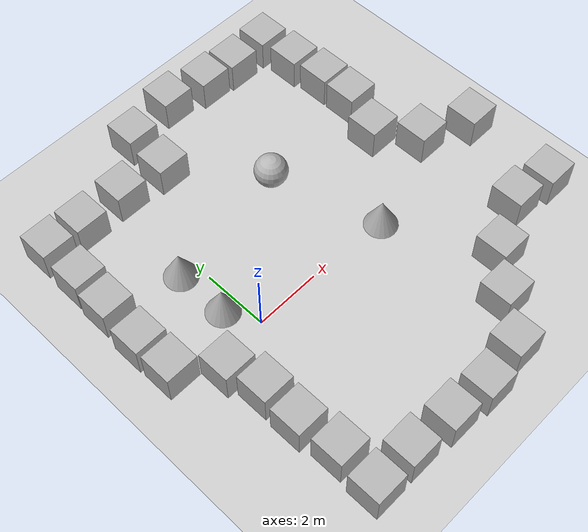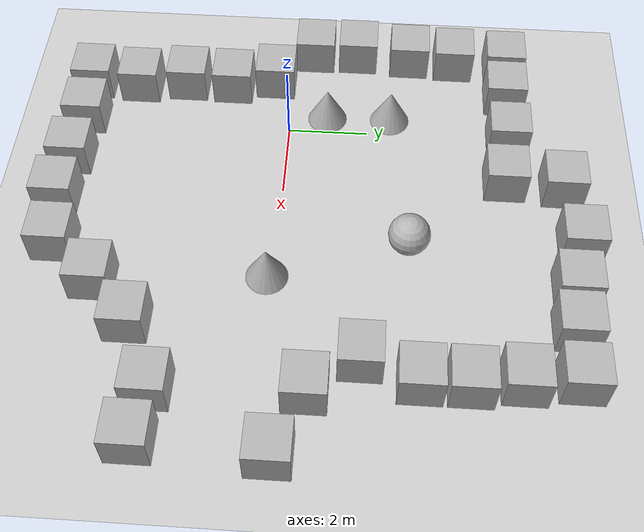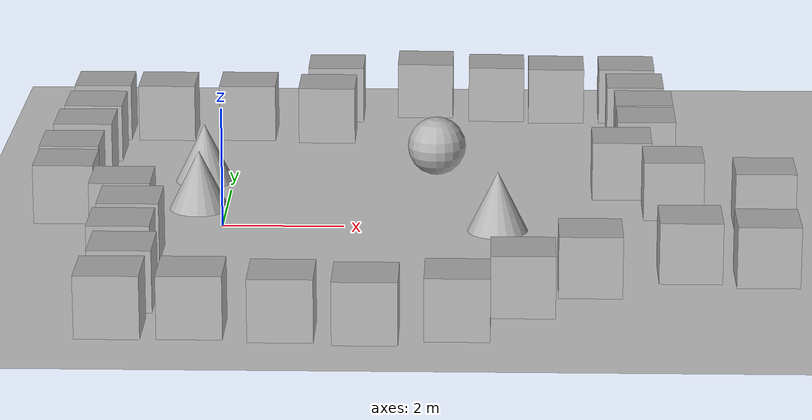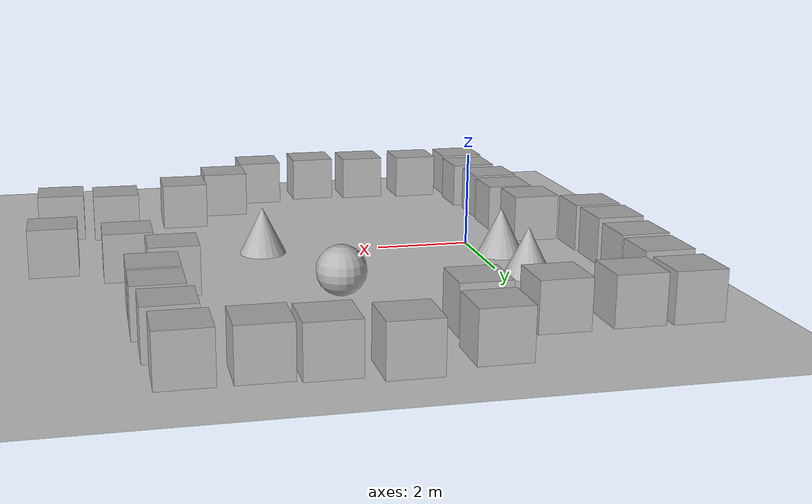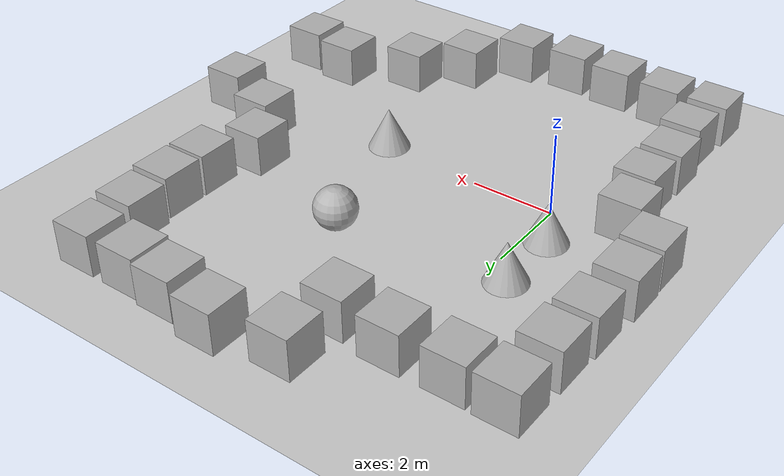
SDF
<sdf version='1.10'>
  <world name='empty'>
    <physics name='1ms' type='ignored'>
      <max_step_size>0.001</max_step_size>
      <real_time_factor>1</real_time_factor>
      <real_time_update_rate>1000</real_time_update_rate>
    </physics>
    <plugin name='gz::sim::systems::Physics' filename='gz-sim-physics-system'/>
    <plugin name='gz::sim::systems::UserCommands' filename='gz-sim-user-commands-system'/>
    <plugin name='gz::sim::systems::SceneBroadcaster' filename='gz-sim-scene-broadcaster-system'/>
    <plugin name='gz::sim::systems::Contact' filename='gz-sim-contact-system'/>
    <gravity>0 0 -9.8000000000000007</gravity>
    <magnetic_field>5.5644999999999998e-06 2.2875799999999999e-05 -4.2388400000000002e-05</magnetic_field>
    <atmosphere type='adiabatic'/>
    <scene>
      <ambient>0.400000006 0.400000006 0.400000006 1</ambient>
      <background>0.699999988 0.699999988 0.699999988 1</background>
      <shadows>true</shadows>
    </scene>
    <model name='ground_plane'>
      <static>true</static>
      <link name='link'>
        <collision name='collision'>
          <geometry>
            <plane>
              <normal>0 0 1</normal>
              <size>100 100</size>
            </plane>
          </geometry>
          <surface>
            <friction>
              <ode/>
            </friction>
            <bounce/>
            <contact/>
          </surface>
        </collision>
        <visual name='visual'>
          <geometry>
            <plane>
              <normal>0 0 1</normal>
              <size>100 100</size>
            </plane>
          </geometry>
          <material>
            <ambient>0.800000012 0.800000012 0.800000012 1</ambient>
            <diffuse>0.800000012 0.800000012 0.800000012 1</diffuse>
            <specular>0.800000012 0.800000012 0.800000012 1</specular>
          </material>
        </visual>
        <pose>0 0 0 0 0 0</pose>
        <inertial>
          <pose>0 0 0 0 0 0</pose>
          <mass>1</mass>
          <inertia>
            <ixx>1</ixx>
            <ixy>0</ixy>
            <ixz>0</ixz>
            <iyy>1</iyy>
            <iyz>0</iyz>
            <izz>1</izz>
          </inertia>
        </inertial>
        <enable_wind>false</enable_wind>
      </link>
      <pose>0 0 0 0 0 0</pose>
      <self_collide>false</self_collide>
    </model>
    <model name='box'>
      <pose>0.066471774833243735 5.5747646299520088 0.5 0 0 0</pose>
      <link name='box_link'>
        <inertial>
          <inertia>
            <ixx>0.16666</ixx>
            <ixy>0</ixy>
            <ixz>0</ixz>
            <iyy>0.16666</iyy>
            <iyz>0</iyz>
            <izz>0.16666</izz>
          </inertia>
          <mass>1</mass>
          <pose>0 0 0 0 0 0</pose>
        </inertial>
        <collision name='box_collision'>
          <geometry>
            <box>
              <size>1 1 1</size>
            </box>
          </geometry>
          <surface>
            <friction>
              <ode/>
            </friction>
            <bounce/>
            <contact/>
          </surface>
        </collision>
        <visual name='box_visual'>
          <geometry>
            <box>
              <size>1 1 1</size>
            </box>
          </geometry>
          <material>
            <ambient>0.300000012 0.300000012 0.300000012 1</ambient>
            <diffuse>0.699999988 0.699999988 0.699999988 1</diffuse>
            <specular>1 1 1 1</specular>
          </material>
        </visual>
        <pose>0 0 0 0 0 0</pose>
        <enable_wind>false</enable_wind>
      </link>
      <static>false</static>
      <self_collide>false</self_collide>
    </model>
    <model name='box_0'>
      <pose>1.4889632192112092 5.4475619647111539 0.5 0 0 0</pose>
      <link name='box_link'>
        <inertial>
          <inertia>
            <ixx>0.16666</ixx>
            <ixy>0</ixy>
            <ixz>0</ixz>
            <iyy>0.16666</iyy>
            <iyz>0</iyz>
            <izz>0.16666</izz>
          </inertia>
          <mass>1</mass>
          <pose>0 0 0 0 0 0</pose>
        </inertial>
        <collision name='box_collision'>
          <geometry>
            <box>
              <size>1 1 1</size>
            </box>
          </geometry>
          <surface>
            <friction>
              <ode/>
            </friction>
            <bounce/>
            <contact/>
          </surface>
        </collision>
        <visual name='box_visual'>
          <geometry>
            <box>
              <size>1 1 1</size>
            </box>
          </geometry>
          <material>
            <ambient>0.300000012 0.300000012 0.300000012 1</ambient>
            <diffuse>0.699999988 0.699999988 0.699999988 1</diffuse>
            <specular>1 1 1 1</specular>
          </material>
        </visual>
        <pose>0 0 0 0 0 0</pose>
        <enable_wind>false</enable_wind>
      </link>
      <static>false</static>
      <self_collide>false</self_collide>
    </model>
    <model name='box_1'>
      <pose>3.212196005500445 7.1497972226885294 0.5 0 0 0</pose>
      <link name='box_link'>
        <inertial>
          <inertia>
            <ixx>0.16666</ixx>
            <ixy>0</ixy>
            <ixz>0</ixz>
            <iyy>0.16666</iyy>
            <iyz>0</iyz>
            <izz>0.16666</izz>
          </inertia>
          <mass>1</mass>
          <pose>0 0 0 0 0 0</pose>
        </inertial>
        <collision name='box_collision'>
          <geometry>
            <box>
              <size>1 1 1</size>
            </box>
          </geometry>
          <surface>
            <friction>
              <ode/>
            </friction>
            <bounce/>
            <contact/>
          </surface>
        </collision>
        <visual name='box_visual'>
          <geometry>
            <box>
              <size>1 1 1</size>
            </box>
          </geometry>
          <material>
            <ambient>0.300000012 0.300000012 0.300000012 1</ambient>
            <diffuse>0.699999988 0.699999988 0.699999988 1</diffuse>
            <specular>1 1 1 1</specular>
          </material>
        </visual>
        <pose>0 0 0 0 0 0</pose>
        <enable_wind>false</enable_wind>
      </link>
      <static>false</static>
      <self_collide>false</self_collide>
    </model>
    <model name='box_2'>
      <pose>4.5056240039213673 6.9323731106292428 0.5 0 0 0</pose>
      <link name='box_link'>
        <inertial>
          <inertia>
            <ixx>0.16666</ixx>
            <ixy>0</ixy>
            <ixz>0</ixz>
            <iyy>0.16666</iyy>
            <iyz>0</iyz>
            <izz>0.16666</izz>
          </inertia>
          <mass>1</mass>
          <pose>0 0 0 0 0 0</pose>
        </inertial>
        <collision name='box_collision'>
          <geometry>
            <box>
              <size>1 1 1</size>
            </box>
          </geometry>
          <surface>
            <friction>
              <ode/>
            </friction>
            <bounce/>
            <contact/>
          </surface>
        </collision>
        <visual name='box_visual'>
          <geometry>
            <box>
              <size>1 1 1</size>
            </box>
          </geometry>
          <material>
            <ambient>0.300000012 0.300000012 0.300000012 1</ambient>
            <diffuse>0.699999988 0.699999988 0.699999988 1</diffuse>
            <specular>1 1 1 1</specular>
          </material>
        </visual>
        <pose>0 0 0 0 0 0</pose>
        <enable_wind>false</enable_wind>
      </link>
      <static>false</static>
      <self_collide>false</self_collide>
    </model>
    <model name='box_3'>
      <pose>5.5894280411988433 6.8484770996586652 0.5 0 0 0</pose>
      <link name='box_link'>
        <inertial>
          <inertia>
            <ixx>0.16666</ixx>
            <ixy>0</ixy>
            <ixz>0</ixz>
            <iyy>0.16666</iyy>
            <iyz>0</iyz>
            <izz>0.16666</izz>
          </inertia>
          <mass>1</mass>
          <pose>0 0 0 0 0 0</pose>
        </inertial>
        <collision name='box_collision'>
          <geometry>
            <box>
              <size>1 1 1</size>
            </box>
          </geometry>
          <surface>
            <friction>
              <ode/>
            </friction>
            <bounce/>
            <contact/>
          </surface>
        </collision>
        <visual name='box_visual'>
          <geometry>
            <box>
              <size>1 1 1</size>
            </box>
          </geometry>
          <material>
            <ambient>0.300000012 0.300000012 0.300000012 1</ambient>
            <diffuse>0.699999988 0.699999988 0.699999988 1</diffuse>
            <specular>1 1 1 1</specular>
          </material>
        </visual>
        <pose>0 0 0 0 0 0</pose>
        <enable_wind>false</enable_wind>
      </link>
      <static>false</static>
      <self_collide>false</self_collide>
    </model>
    <model name='box_4'>
      <pose>6.8624522275619775 6.8500571474567478 0.5 0 0 0</pose>
      <link name='box_link'>
        <inertial>
          <inertia>
            <ixx>0.16666</ixx>
            <ixy>0</ixy>
            <ixz>0</ixz>
            <iyy>0.16666</iyy>
            <iyz>0</iyz>
            <izz>0.16666</izz>
          </inertia>
          <mass>1</mass>
          <pose>0 0 0 0 0 0</pose>
        </inertial>
        <collision name='box_collision'>
          <geometry>
            <box>
              <size>1 1 1</size>
            </box>
          </geometry>
          <surface>
            <friction>
              <ode/>
            </friction>
            <bounce/>
            <contact/>
          </surface>
        </collision>
        <visual name='box_visual'>
          <geometry>
            <box>
              <size>1 1 1</size>
            </box>
          </geometry>
          <material>
            <ambient>0.300000012 0.300000012 0.300000012 1</ambient>
            <diffuse>0.699999988 0.699999988 0.699999988 1</diffuse>
            <specular>1 1 1 1</specular>
          </material>
        </visual>
        <pose>0 0 0 0 0 0</pose>
        <enable_wind>false</enable_wind>
      </link>
      <static>false</static>
      <self_collide>false</self_collide>
    </model>
    <model name='box_5'>
      <pose>6.9795936383020276 5.6229369140353169 0.5 0 0 0</pose>
      <link name='box_link'>
        <inertial>
          <inertia>
            <ixx>0.16666</ixx>
            <ixy>0</ixy>
            <ixz>0</ixz>
            <iyy>0.16666</iyy>
            <iyz>0</iyz>
            <izz>0.16666</izz>
          </inertia>
          <mass>1</mass>
          <pose>0 0 0 0 0 0</pose>
        </inertial>
        <collision name='box_collision'>
          <geometry>
            <box>
              <size>1 1 1</size>
            </box>
          </geometry>
          <surface>
            <friction>
              <ode/>
            </friction>
            <bounce/>
            <contact/>
          </surface>
        </collision>
        <visual name='box_visual'>
          <geometry>
            <box>
              <size>1 1 1</size>
            </box>
          </geometry>
          <material>
            <ambient>0.300000012 0.300000012 0.300000012 1</ambient>
            <diffuse>0.699999988 0.699999988 0.699999988 1</diffuse>
            <specular>1 1 1 1</specular>
          </material>
        </visual>
        <pose>0 0 0 0 0 0</pose>
        <enable_wind>false</enable_wind>
      </link>
      <static>false</static>
      <self_collide>false</self_collide>
    </model>
    <model name='box_6'>
      <pose>7.0955848219121158 4.476304256357591 0.5 0 0 0</pose>
      <link name='box_link'>
        <inertial>
          <inertia>
            <ixx>0.16666</ixx>
            <ixy>0</ixy>
            <ixz>0</ixz>
            <iyy>0.16666</iyy>
            <iyz>0</iyz>
            <izz>0.16666</izz>
          </inertia>
          <mass>1</mass>
          <pose>0 0 0 0 0 0</pose>
        </inertial>
        <collision name='box_collision'>
          <geometry>
            <box>
              <size>1 1 1</size>
            </box>
          </geometry>
          <surface>
            <friction>
              <ode/>
            </friction>
            <bounce/>
            <contact/>
          </surface>
        </collision>
        <visual name='box_visual'>
          <geometry>
            <box>
              <size>1 1 1</size>
            </box>
          </geometry>
          <material>
            <ambient>0.300000012 0.300000012 0.300000012 1</ambient>
            <diffuse>0.699999988 0.699999988 0.699999988 1</diffuse>
            <specular>1 1 1 1</specular>
          </material>
        </visual>
        <pose>0 0 0 0 0 0</pose>
        <enable_wind>false</enable_wind>
      </link>
      <static>false</static>
      <self_collide>false</self_collide>
    </model>
    <model name='box_7'>
      <pose>7.0955847178248348 3.3881413461543612 0.5 0 0 0</pose>
      <link name='box_link'>
        <inertial>
          <inertia>
            <ixx>0.16666</ixx>
            <ixy>0</ixy>
            <ixz>0</ixz>
            <iyy>0.16666</iyy>
            <iyz>0</iyz>
            <izz>0.16666</izz>
          </inertia>
          <mass>1</mass>
          <pose>0 0 0 0 0 0</pose>
        </inertial>
        <collision name='box_collision'>
          <geometry>
            <box>
              <size>1 1 1</size>
            </box>
          </geometry>
          <surface>
            <friction>
              <ode/>
            </friction>
            <bounce/>
            <contact/>
          </surface>
        </collision>
        <visual name='box_visual'>
          <geometry>
            <box>
              <size>1 1 1</size>
            </box>
          </geometry>
          <material>
            <ambient>0.300000012 0.300000012 0.300000012 1</ambient>
            <diffuse>0.699999988 0.699999988 0.699999988 1</diffuse>
            <specular>1 1 1 1</specular>
          </material>
        </visual>
        <pose>0 0 0 0 0 0</pose>
        <enable_wind>false</enable_wind>
      </link>
      <static>false</static>
      <self_collide>false</self_collide>
    </model>
    <model name='box_8'>
      <pose>6.6366276933213602 2.0911766899677038 0.5 0 0 0</pose>
      <link name='box_link'>
        <inertial>
          <inertia>
            <ixx>0.16666</ixx>
            <ixy>0</ixy>
            <ixz>0</ixz>
            <iyy>0.16666</iyy>
            <iyz>0</iyz>
            <izz>0.16666</izz>
          </inertia>
          <mass>1</mass>
          <pose>0 0 0 0 0 0</pose>
        </inertial>
        <collision name='box_collision'>
          <geometry>
            <box>
              <size>1 1 1</size>
            </box>
          </geometry>
          <surface>
            <friction>
              <ode/>
            </friction>
            <bounce/>
            <contact/>
          </surface>
        </collision>
        <visual name='box_visual'>
          <geometry>
            <box>
              <size>1 1 1</size>
            </box>
          </geometry>
          <material>
            <ambient>0.300000012 0.300000012 0.300000012 1</ambient>
            <diffuse>0.699999988 0.699999988 0.699999988 1</diffuse>
            <specular>1 1 1 1</specular>
          </material>
        </visual>
        <pose>0 0 0 0 0 0</pose>
        <enable_wind>false</enable_wind>
      </link>
      <static>false</static>
      <self_collide>false</self_collide>
    </model>
    <model name='box_9'>
      <pose>7.4618267704185612 0.93544864776346104 0.5 0 0 0</pose>
      <link name='box_link'>
        <inertial>
          <inertia>
            <ixx>0.16666</ixx>
            <ixy>0</ixy>
            <ixz>0</ixz>
            <iyy>0.16666</iyy>
            <iyz>0</iyz>
            <izz>0.16666</izz>
          </inertia>
          <mass>1</mass>
          <pose>0 0 0 0 0 0</pose>
        </inertial>
        <collision name='box_collision'>
          <geometry>
            <box>
              <size>1 1 1</size>
            </box>
          </geometry>
          <surface>
            <friction>
              <ode/>
            </friction>
            <bounce/>
            <contact/>
          </surface>
        </collision>
        <visual name='box_visual'>
          <geometry>
            <box>
              <size>1 1 1</size>
            </box>
          </geometry>
          <material>
            <ambient>0.300000012 0.300000012 0.300000012 1</ambient>
            <diffuse>0.699999988 0.699999988 0.699999988 1</diffuse>
            <specular>1 1 1 1</specular>
          </material>
        </visual>
        <pose>0 0 0 0 0 0</pose>
        <enable_wind>false</enable_wind>
      </link>
      <static>false</static>
      <self_collide>false</self_collide>
    </model>
    <model name='box_10'>
      <pose>8.9394033915998996 0.30266245388562008 0.5 0 0 0</pose>
      <link name='box_link'>
        <inertial>
          <inertia>
            <ixx>0.16666</ixx>
            <ixy>0</ixy>
            <ixz>0</ixz>
            <iyy>0.16666</iyy>
            <iyz>0</iyz>
            <izz>0.16666</izz>
          </inertia>
          <mass>1</mass>
          <pose>0 0 0 0 0 0</pose>
        </inertial>
        <collision name='box_collision'>
          <geometry>
            <box>
              <size>1 1 1</size>
            </box>
          </geometry>
          <surface>
            <friction>
              <ode/>
            </friction>
            <bounce/>
            <contact/>
          </surface>
        </collision>
        <visual name='box_visual'>
          <geometry>
            <box>
              <size>1 1 1</size>
            </box>
          </geometry>
          <material>
            <ambient>0.300000012 0.300000012 0.300000012 1</ambient>
            <diffuse>0.699999988 0.699999988 0.699999988 1</diffuse>
            <specular>1 1 1 1</specular>
          </material>
        </visual>
        <pose>0 0 0 0 0 0</pose>
        <enable_wind>false</enable_wind>
      </link>
      <static>false</static>
      <self_collide>false</self_collide>
    </model>
    <model name='box_11'>
      <pose>8.7969272005625534 -2.5934772540304301 0.5 0 0 0</pose>
      <link name='box_link'>
        <inertial>
          <inertia>
            <ixx>0.16666</ixx>
            <ixy>0</ixy>
            <ixz>0</ixz>
            <iyy>0.16666</iyy>
            <iyz>0</iyz>
            <izz>0.16666</izz>
          </inertia>
          <mass>1</mass>
          <pose>0 0 0 0 0 0</pose>
        </inertial>
        <collision name='box_collision'>
          <geometry>
            <box>
              <size>1 1 1</size>
            </box>
          </geometry>
          <surface>
            <friction>
              <ode/>
            </friction>
            <bounce/>
            <contact/>
          </surface>
        </collision>
        <visual name='box_visual'>
          <geometry>
            <box>
              <size>1 1 1</size>
            </box>
          </geometry>
          <material>
            <ambient>0.300000012 0.300000012 0.300000012 1</ambient>
            <diffuse>0.699999988 0.699999988 0.699999988 1</diffuse>
            <specular>1 1 1 1</specular>
          </material>
        </visual>
        <pose>0 0 0 0 0 0</pose>
        <enable_wind>false</enable_wind>
      </link>
      <static>false</static>
      <self_collide>false</self_collide>
    </model>
    <model name='box_12'>
      <pose>7.5848541365645268 -2.4196230418796727 0.5 0 0 0</pose>
      <link name='box_link'>
        <inertial>
          <inertia>
            <ixx>0.16666</ixx>
            <ixy>0</ixy>
            <ixz>0</ixz>
            <iyy>0.16666</iyy>
            <iyz>0</iyz>
            <izz>0.16666</izz>
          </inertia>
          <mass>1</mass>
          <pose>0 0 0 0 0 0</pose>
        </inertial>
        <collision name='box_collision'>
          <geometry>
            <box>
              <size>1 1 1</size>
            </box>
          </geometry>
          <surface>
            <friction>
              <ode/>
            </friction>
            <bounce/>
            <contact/>
          </surface>
        </collision>
        <visual name='box_visual'>
          <geometry>
            <box>
              <size>1 1 1</size>
            </box>
          </geometry>
          <material>
            <ambient>0.300000012 0.300000012 0.300000012 1</ambient>
            <diffuse>0.699999988 0.699999988 0.699999988 1</diffuse>
            <specular>1 1 1 1</specular>
          </material>
        </visual>
        <pose>0 0 0 0 0 0</pose>
        <enable_wind>false</enable_wind>
      </link>
      <static>false</static>
      <self_collide>false</self_collide>
    </model>
    <model name='box_13'>
      <pose>5.9910583823746677 -3.1594043227678354 0.5 0 0 0</pose>
      <link name='box_link'>
        <inertial>
          <inertia>
            <ixx>0.16666</ixx>
            <ixy>0</ixy>
            <ixz>0</ixz>
            <iyy>0.16666</iyy>
            <iyz>0</iyz>
            <izz>0.16666</izz>
          </inertia>
          <mass>1</mass>
          <pose>0 0 0 0 0 0</pose>
        </inertial>
        <collision name='box_collision'>
          <geometry>
            <box>
              <size>1 1 1</size>
            </box>
          </geometry>
          <surface>
            <friction>
              <ode/>
            </friction>
            <bounce/>
            <contact/>
          </surface>
        </collision>
        <visual name='box_visual'>
          <geometry>
            <box>
              <size>1 1 1</size>
            </box>
          </geometry>
          <material>
            <ambient>0.300000012 0.300000012 0.300000012 1</ambient>
            <diffuse>0.699999988 0.699999988 0.699999988 1</diffuse>
            <specular>1 1 1 1</specular>
          </material>
        </visual>
        <pose>0 0 0 0 0 0</pose>
        <enable_wind>false</enable_wind>
      </link>
      <static>false</static>
      <self_collide>false</self_collide>
    </model>
    <model name='box_14'>
      <pose>4.9364566446885334 -4.1437315246593691 0.5 0 0 0</pose>
      <link name='box_link'>
        <inertial>
          <inertia>
            <ixx>0.16666</ixx>
            <ixy>0</ixy>
            <ixz>0</ixz>
            <iyy>0.16666</iyy>
            <iyz>0</iyz>
            <izz>0.16666</izz>
          </inertia>
          <mass>1</mass>
          <pose>0 0 0 0 0 0</pose>
        </inertial>
        <collision name='box_collision'>
          <geometry>
            <box>
              <size>1 1 1</size>
            </box>
          </geometry>
          <surface>
            <friction>
              <ode/>
            </friction>
            <bounce/>
            <contact/>
          </surface>
        </collision>
        <visual name='box_visual'>
          <geometry>
            <box>
              <size>1 1 1</size>
            </box>
          </geometry>
          <material>
            <ambient>0.300000012 0.300000012 0.300000012 1</ambient>
            <diffuse>0.699999988 0.699999988 0.699999988 1</diffuse>
            <specular>1 1 1 1</specular>
          </material>
        </visual>
        <pose>0 0 0 0 0 0</pose>
        <enable_wind>false</enable_wind>
      </link>
      <static>false</static>
      <self_collide>false</self_collide>
    </model>
    <model name='box_15'>
      <pose>3.9402693880574962 -5.2505232207250145 0.5 0 0 0</pose>
      <link name='box_link'>
        <inertial>
          <inertia>
            <ixx>0.16666</ixx>
            <ixy>0</ixy>
            <ixz>0</ixz>
            <iyy>0.16666</iyy>
            <iyz>0</iyz>
            <izz>0.16666</izz>
          </inertia>
          <mass>1</mass>
          <pose>0 0 0 0 0 0</pose>
        </inertial>
        <collision name='box_collision'>
          <geometry>
            <box>
              <size>1 1 1</size>
            </box>
          </geometry>
          <surface>
            <friction>
              <ode/>
            </friction>
            <bounce/>
            <contact/>
          </surface>
        </collision>
        <visual name='box_visual'>
          <geometry>
            <box>
              <size>1 1 1</size>
            </box>
          </geometry>
          <material>
            <ambient>0.300000012 0.300000012 0.300000012 1</ambient>
            <diffuse>0.699999988 0.699999988 0.699999988 1</diffuse>
            <specular>1 1 1 1</specular>
          </material>
        </visual>
        <pose>0 0 0 0 0 0</pose>
        <enable_wind>false</enable_wind>
      </link>
      <static>false</static>
      <self_collide>false</self_collide>
    </model>
    <model name='box_16'>
      <pose>2.5586938699792725 -5.4526625604749706 0.5 0 0 0</pose>
      <link name='box_link'>
        <inertial>
          <inertia>
            <ixx>0.16666</ixx>
            <ixy>0</ixy>
            <ixz>0</ixz>
            <iyy>0.16666</iyy>
            <iyz>0</iyz>
            <izz>0.16666</izz>
          </inertia>
          <mass>1</mass>
          <pose>0 0 0 0 0 0</pose>
        </inertial>
        <collision name='box_collision'>
          <geometry>
            <box>
              <size>1 1 1</size>
            </box>
          </geometry>
          <surface>
            <friction>
              <ode/>
            </friction>
            <bounce/>
            <contact/>
          </surface>
        </collision>
        <visual name='box_visual'>
          <geometry>
            <box>
              <size>1 1 1</size>
            </box>
          </geometry>
          <material>
            <ambient>0.300000012 0.300000012 0.300000012 1</ambient>
            <diffuse>0.699999988 0.699999988 0.699999988 1</diffuse>
            <specular>1 1 1 1</specular>
          </material>
        </visual>
        <pose>0 0 0 0 0 0</pose>
        <enable_wind>false</enable_wind>
      </link>
      <static>false</static>
      <self_collide>false</self_collide>
    </model>
    <model name='box_17'>
      <pose>1.2883357578303318 -5.3460039952592329 0.5 0 0 0</pose>
      <link name='box_link'>
        <inertial>
          <inertia>
            <ixx>0.16666</ixx>
            <ixy>0</ixy>
            <ixz>0</ixz>
            <iyy>0.16666</iyy>
            <iyz>0</iyz>
            <izz>0.16666</izz>
          </inertia>
          <mass>1</mass>
          <pose>0 0 0 0 0 0</pose>
        </inertial>
        <collision name='box_collision'>
          <geometry>
            <box>
              <size>1 1 1</size>
            </box>
          </geometry>
          <surface>
            <friction>
              <ode/>
            </friction>
            <bounce/>
            <contact/>
          </surface>
        </collision>
        <visual name='box_visual'>
          <geometry>
            <box>
              <size>1 1 1</size>
            </box>
          </geometry>
          <material>
            <ambient>0.300000012 0.300000012 0.300000012 1</ambient>
            <diffuse>0.699999988 0.699999988 0.699999988 1</diffuse>
            <specular>1 1 1 1</specular>
          </material>
        </visual>
        <pose>0 0 0 0 0 0</pose>
        <enable_wind>false</enable_wind>
      </link>
      <static>false</static>
      <self_collide>false</self_collide>
    </model>
    <model name='box_18'>
      <pose>-0.085773464586192283 -5.2340860307095287 0.5 0 0 0</pose>
      <link name='box_link'>
        <inertial>
          <inertia>
            <ixx>0.16666</ixx>
            <ixy>0</ixy>
            <ixz>0</ixz>
            <iyy>0.16666</iyy>
            <iyz>0</iyz>
            <izz>0.16666</izz>
          </inertia>
          <mass>1</mass>
          <pose>0 0 0 0 0 0</pose>
        </inertial>
        <collision name='box_collision'>
          <geometry>
            <box>
              <size>1 1 1</size>
            </box>
          </geometry>
          <surface>
            <friction>
              <ode/>
            </friction>
            <bounce/>
            <contact/>
          </surface>
        </collision>
        <visual name='box_visual'>
          <geometry>
            <box>
              <size>1 1 1</size>
            </box>
          </geometry>
          <material>
            <ambient>0.300000012 0.300000012 0.300000012 1</ambient>
            <diffuse>0.699999988 0.699999988 0.699999988 1</diffuse>
            <specular>1 1 1 1</specular>
          </material>
        </visual>
        <pose>0 0 0 0 0 0</pose>
        <enable_wind>false</enable_wind>
      </link>
      <static>false</static>
      <self_collide>false</self_collide>
    </model>
    <model name='box_19'>
      <pose>-1.3705378831613686 5.5536655617161061 0.5 0 0 0</pose>
      <link name='box_link'>
        <inertial>
          <inertia>
            <ixx>0.16666</ixx>
            <ixy>0</ixy>
            <ixz>0</ixz>
            <iyy>0.16666</iyy>
            <iyz>0</iyz>
            <izz>0.16666</izz>
          </inertia>
          <mass>1</mass>
          <pose>0 0 0 0 0 0</pose>
        </inertial>
        <collision name='box_collision'>
          <geometry>
            <box>
              <size>1 1 1</size>
            </box>
          </geometry>
          <surface>
            <friction>
              <ode/>
            </friction>
            <bounce/>
            <contact/>
          </surface>
        </collision>
        <visual name='box_visual'>
          <geometry>
            <box>
              <size>1 1 1</size>
            </box>
          </geometry>
          <material>
            <ambient>0.300000012 0.300000012 0.300000012 1</ambient>
            <diffuse>0.699999988 0.699999988 0.699999988 1</diffuse>
            <specular>1 1 1 1</specular>
          </material>
        </visual>
        <pose>0 0 0 0 0 0</pose>
        <enable_wind>false</enable_wind>
      </link>
      <static>false</static>
      <self_collide>false</self_collide>
    </model>
    <model name='box_20'>
      <pose>-2.5083063745308651 5.5757441272876704 0.5 0 0 0</pose>
      <link name='box_link'>
        <inertial>
          <inertia>
            <ixx>0.16666</ixx>
            <ixy>0</ixy>
            <ixz>0</ixz>
            <iyy>0.16666</iyy>
            <iyz>0</iyz>
            <izz>0.16666</izz>
          </inertia>
          <mass>1</mass>
          <pose>0 0 0 0 0 0</pose>
        </inertial>
        <collision name='box_collision'>
          <geometry>
            <box>
              <size>1 1 1</size>
            </box>
          </geometry>
          <surface>
            <friction>
              <ode/>
            </friction>
            <bounce/>
            <contact/>
          </surface>
        </collision>
        <visual name='box_visual'>
          <geometry>
            <box>
              <size>1 1 1</size>
            </box>
          </geometry>
          <material>
            <ambient>0.300000012 0.300000012 0.300000012 1</ambient>
            <diffuse>0.699999988 0.699999988 0.699999988 1</diffuse>
            <specular>1 1 1 1</specular>
          </material>
        </visual>
        <pose>0 0 0 0 0 0</pose>
        <enable_wind>false</enable_wind>
      </link>
      <static>false</static>
      <self_collide>false</self_collide>
    </model>
    <model name='box_21'>
      <pose>-2.536796185323368 4.2278454088273909 0.5 0 0 0</pose>
      <link name='box_link'>
        <inertial>
          <inertia>
            <ixx>0.16666</ixx>
            <ixy>0</ixy>
            <ixz>0</ixz>
            <iyy>0.16666</iyy>
            <iyz>0</iyz>
            <izz>0.16666</izz>
          </inertia>
          <mass>1</mass>
          <pose>0 0 0 0 0 0</pose>
        </inertial>
        <collision name='box_collision'>
          <geometry>
            <box>
              <size>1 1 1</size>
            </box>
          </geometry>
          <surface>
            <friction>
              <ode/>
            </friction>
            <bounce/>
            <contact/>
          </surface>
        </collision>
        <visual name='box_visual'>
          <geometry>
            <box>
              <size>1 1 1</size>
            </box>
          </geometry>
          <material>
            <ambient>0.300000012 0.300000012 0.300000012 1</ambient>
            <diffuse>0.699999988 0.699999988 0.699999988 1</diffuse>
            <specular>1 1 1 1</specular>
          </material>
        </visual>
        <pose>0 0 0 0 0 0</pose>
        <enable_wind>false</enable_wind>
      </link>
      <static>false</static>
      <self_collide>false</self_collide>
    </model>
    <model name='box_22'>
      <pose>-2.5929773482819316 3.0507697870662169 0.5 0 0 0</pose>
      <link name='box_link'>
        <inertial>
          <inertia>
            <ixx>0.16666</ixx>
            <ixy>0</ixy>
            <ixz>0</ixz>
            <iyy>0.16666</iyy>
            <iyz>0</iyz>
            <izz>0.16666</izz>
          </inertia>
          <mass>1</mass>
          <pose>0 0 0 0 0 0</pose>
        </inertial>
        <collision name='box_collision'>
          <geometry>
            <box>
              <size>1 1 1</size>
            </box>
          </geometry>
          <surface>
            <friction>
              <ode/>
            </friction>
            <bounce/>
            <contact/>
          </surface>
        </collision>
        <visual name='box_visual'>
          <geometry>
            <box>
              <size>1 1 1</size>
            </box>
          </geometry>
          <material>
            <ambient>0.300000012 0.300000012 0.300000012 1</ambient>
            <diffuse>0.699999988 0.699999988 0.699999988 1</diffuse>
            <specular>1 1 1 1</specular>
          </material>
        </visual>
        <pose>0 0 0 0 0 0</pose>
        <enable_wind>false</enable_wind>
      </link>
      <static>false</static>
      <self_collide>false</self_collide>
    </model>
    <model name='box_23'>
      <pose>-2.6753883232406483 1.6818091283670233 0.5 0 0 0</pose>
      <link name='box_link'>
        <inertial>
          <inertia>
            <ixx>0.16666</ixx>
            <ixy>0</ixy>
            <ixz>0</ixz>
            <iyy>0.16666</iyy>
            <iyz>0</iyz>
            <izz>0.16666</izz>
          </inertia>
          <mass>1</mass>
          <pose>0 0 0 0 0 0</pose>
        </inertial>
        <collision name='box_collision'>
          <geometry>
            <box>
              <size>1 1 1</size>
            </box>
          </geometry>
          <surface>
            <friction>
              <ode/>
            </friction>
            <bounce/>
            <contact/>
          </surface>
        </collision>
        <visual name='box_visual'>
          <geometry>
            <box>
              <size>1 1 1</size>
            </box>
          </geometry>
          <material>
            <ambient>0.300000012 0.300000012 0.300000012 1</ambient>
            <diffuse>0.699999988 0.699999988 0.699999988 1</diffuse>
            <specular>1 1 1 1</specular>
          </material>
        </visual>
        <pose>0 0 0 0 0 0</pose>
        <enable_wind>false</enable_wind>
      </link>
      <static>false</static>
      <self_collide>false</self_collide>
    </model>
    <model name='box_24'>
      <pose>-2.6476689053083247 0.54342447693309592 0.5 0 0 0</pose>
      <link name='box_link'>
        <inertial>
          <inertia>
            <ixx>0.16666</ixx>
            <ixy>0</ixy>
            <ixz>0</ixz>
            <iyy>0.16666</iyy>
            <iyz>0</iyz>
            <izz>0.16666</izz>
          </inertia>
          <mass>1</mass>
          <pose>0 0 0 0 0 0</pose>
        </inertial>
        <collision name='box_collision'>
          <geometry>
            <box>
              <size>1 1 1</size>
            </box>
          </geometry>
          <surface>
            <friction>
              <ode/>
            </friction>
            <bounce/>
            <contact/>
          </surface>
        </collision>
        <visual name='box_visual'>
          <geometry>
            <box>
              <size>1 1 1</size>
            </box>
          </geometry>
          <material>
            <ambient>0.300000012 0.300000012 0.300000012 1</ambient>
            <diffuse>0.699999988 0.699999988 0.699999988 1</diffuse>
            <specular>1 1 1 1</specular>
          </material>
        </visual>
        <pose>0 0 0 0 0 0</pose>
        <enable_wind>false</enable_wind>
      </link>
      <static>false</static>
      <self_collide>false</self_collide>
    </model>
    <model name='box_25'>
      <pose>-1.3313386495651098 -5.2438265660013501 0.5 0 0 0</pose>
      <link name='box_link'>
        <inertial>
          <inertia>
            <ixx>0.16666</ixx>
            <ixy>0</ixy>
            <ixz>0</ixz>
            <iyy>0.16666</iyy>
            <iyz>0</iyz>
            <izz>0.16666</izz>
          </inertia>
          <mass>1</mass>
          <pose>0 0 0 0 0 0</pose>
        </inertial>
        <collision name='box_collision'>
          <geometry>
            <box>
              <size>1 1 1</size>
            </box>
          </geometry>
          <surface>
            <friction>
              <ode/>
            </friction>
            <bounce/>
            <contact/>
          </surface>
        </collision>
        <visual name='box_visual'>
          <geometry>
            <box>
              <size>1 1 1</size>
            </box>
          </geometry>
          <material>
            <ambient>0.300000012 0.300000012 0.300000012 1</ambient>
            <diffuse>0.699999988 0.699999988 0.699999988 1</diffuse>
            <specular>1 1 1 1</specular>
          </material>
        </visual>
        <pose>0 0 0 0 0 0</pose>
        <enable_wind>false</enable_wind>
      </link>
      <static>false</static>
      <self_collide>false</self_collide>
    </model>
    <model name='box_26'>
      <pose>-1.2598186326009939 -3.9979889708613374 0.5 0 0 0</pose>
      <link name='box_link'>
        <inertial>
          <inertia>
            <ixx>0.16666</ixx>
            <ixy>0</ixy>
            <ixz>0</ixz>
            <iyy>0.16666</iyy>
            <iyz>0</iyz>
            <izz>0.16666</izz>
          </inertia>
          <mass>1</mass>
          <pose>0 0 0 0 0 0</pose>
        </inertial>
        <collision name='box_collision'>
          <geometry>
            <box>
              <size>1 1 1</size>
            </box>
          </geometry>
          <surface>
            <friction>
              <ode/>
            </friction>
            <bounce/>
            <contact/>
          </surface>
        </collision>
        <visual name='box_visual'>
          <geometry>
            <box>
              <size>1 1 1</size>
            </box>
          </geometry>
          <material>
            <ambient>0.300000012 0.300000012 0.300000012 1</ambient>
            <diffuse>0.699999988 0.699999988 0.699999988 1</diffuse>
            <specular>1 1 1 1</specular>
          </material>
        </visual>
        <pose>0 0 0 0 0 0</pose>
        <enable_wind>false</enable_wind>
      </link>
      <static>false</static>
      <self_collide>false</self_collide>
    </model>
    <model name='box_27'>
      <pose>-1.4025449007466451 -2.7511282414809077 0.5 0 0 0</pose>
      <link name='box_link'>
        <inertial>
          <inertia>
            <ixx>0.16666</ixx>
            <ixy>0</ixy>
            <ixz>0</ixz>
            <iyy>0.16666</iyy>
            <iyz>0</iyz>
            <izz>0.16666</izz>
          </inertia>
          <mass>1</mass>
          <pose>0 0 0 0 0 0</pose>
        </inertial>
        <collision name='box_collision'>
          <geometry>
            <box>
              <size>1 1 1</size>
            </box>
          </geometry>
          <surface>
            <friction>
              <ode/>
            </friction>
            <bounce/>
            <contact/>
          </surface>
        </collision>
        <visual name='box_visual'>
          <geometry>
            <box>
              <size>1 1 1</size>
            </box>
          </geometry>
          <material>
            <ambient>0.300000012 0.300000012 0.300000012 1</ambient>
            <diffuse>0.699999988 0.699999988 0.699999988 1</diffuse>
            <specular>1 1 1 1</specular>
          </material>
        </visual>
        <pose>0 0 0 0 0 0</pose>
        <enable_wind>false</enable_wind>
      </link>
      <static>false</static>
      <self_collide>false</self_collide>
    </model>
    <model name='box_28'>
      <pose>-1.3683602913752537 -1.5579944607951781 0.5 0 0 0</pose>
      <link name='box_link'>
        <inertial>
          <inertia>
            <ixx>0.16666</ixx>
            <ixy>0</ixy>
            <ixz>0</ixz>
            <iyy>0.16666</iyy>
            <iyz>0</iyz>
            <izz>0.16666</izz>
          </inertia>
          <mass>1</mass>
          <pose>0 0 0 0 0 0</pose>
        </inertial>
        <collision name='box_collision'>
          <geometry>
            <box>
              <size>1 1 1</size>
            </box>
          </geometry>
          <surface>
            <friction>
              <ode/>
            </friction>
            <bounce/>
            <contact/>
          </surface>
        </collision>
        <visual name='box_visual'>
          <geometry>
            <box>
              <size>1 1 1</size>
            </box>
          </geometry>
          <material>
            <ambient>0.300000012 0.300000012 0.300000012 1</ambient>
            <diffuse>0.699999988 0.699999988 0.699999988 1</diffuse>
            <specular>1 1 1 1</specular>
          </material>
        </visual>
        <pose>0 0 0 0 0 0</pose>
        <enable_wind>false</enable_wind>
      </link>
      <static>false</static>
      <self_collide>false</self_collide>
    </model>
    <model name='box_29'>
      <pose>-1.6103002262776869 -0.44938522533864877 0.5 0 0 0</pose>
      <link name='box_link'>
        <inertial>
          <inertia>
            <ixx>0.16666</ixx>
            <ixy>0</ixy>
            <ixz>0</ixz>
            <iyy>0.16666</iyy>
            <iyz>0</iyz>
            <izz>0.16666</izz>
          </inertia>
          <mass>1</mass>
          <pose>0 0 0 0 0 0</pose>
        </inertial>
        <collision name='box_collision'>
          <geometry>
            <box>
              <size>1 1 1</size>
            </box>
          </geometry>
          <surface>
            <friction>
              <ode/>
            </friction>
            <bounce/>
            <contact/>
          </surface>
        </collision>
        <visual name='box_visual'>
          <geometry>
            <box>
              <size>1 1 1</size>
            </box>
          </geometry>
          <material>
            <ambient>0.300000012 0.300000012 0.300000012 1</ambient>
            <diffuse>0.699999988 0.699999988 0.699999988 1</diffuse>
            <specular>1 1 1 1</specular>
          </material>
        </visual>
        <pose>0 0 0 0 0 0</pose>
        <enable_wind>false</enable_wind>
      </link>
      <static>false</static>
      <self_collide>false</self_collide>
    </model>
    <model name='box_30'>
      <pose>1.594207899276979 6.8420982445313685 0.5 0 0 0</pose>
      <link name='box_link'>
        <inertial>
          <inertia>
            <ixx>0.16666</ixx>
            <ixy>0</ixy>
            <ixz>0</ixz>
            <iyy>0.16666</iyy>
            <iyz>0</iyz>
            <izz>0.16666</izz>
          </inertia>
          <mass>1</mass>
          <pose>0 0 0 0 0 0</pose>
        </inertial>
        <collision name='box_collision'>
          <geometry>
            <box>
              <size>1 1 1</size>
            </box>
          </geometry>
          <surface>
            <friction>
              <ode/>
            </friction>
            <bounce/>
            <contact/>
          </surface>
        </collision>
        <visual name='box_visual'>
          <geometry>
            <box>
              <size>1 1 1</size>
            </box>
          </geometry>
          <material>
            <ambient>0.300000012 0.300000012 0.300000012 1</ambient>
            <diffuse>0.699999988 0.699999988 0.699999988 1</diffuse>
            <specular>1 1 1 1</specular>
          </material>
        </visual>
        <pose>0 0 0 0 0 0</pose>
        <enable_wind>false</enable_wind>
      </link>
      <static>false</static>
      <self_collide>false</self_collide>
    </model>
    <model name='sphere'>
      <pose>3.482698831075961 3.1066507778330519 0.5 0 0 0</pose>
      <link name='sphere_link'>
        <inertial>
          <inertia>
            <ixx>0.10000000000000001</ixx>
            <ixy>0</ixy>
            <ixz>0</ixz>
            <iyy>0.10000000000000001</iyy>
            <iyz>0</iyz>
            <izz>0.10000000000000001</izz>
          </inertia>
          <mass>1</mass>
          <pose>0 0 0 0 0 0</pose>
        </inertial>
        <collision name='sphere_collision'>
          <geometry>
            <sphere>
              <radius>0.5</radius>
            </sphere>
          </geometry>
          <surface>
            <friction>
              <ode/>
            </friction>
            <bounce/>
            <contact/>
          </surface>
        </collision>
        <visual name='sphere_visual'>
          <geometry>
            <sphere>
              <radius>0.5</radius>
            </sphere>
          </geometry>
          <material>
            <ambient>0.300000012 0.300000012 0.300000012 1</ambient>
            <diffuse>0.699999988 0.699999988 0.699999988 1</diffuse>
            <specular>1 1 1 1</specular>
          </material>
        </visual>
        <pose>0 0 0 0 0 0</pose>
        <enable_wind>false</enable_wind>
      </link>
      <static>false</static>
      <self_collide>false</self_collide>
    </model>
    <model name='cone'>
      <pose>-0.49704697517558838 2.5817961153297486 0.5 0 0 0</pose>
      <link name='cone_link'>
        <inertial>
          <inertia>
            <ixx>0.074999999999999997</ixx>
            <ixy>0</ixy>
            <ixz>0</ixz>
            <iyy>0.074999999999999997</iyy>
            <iyz>0</iyz>
            <izz>0.074999999999999997</izz>
          </inertia>
          <mass>1</mass>
          <pose>0 0 0 0 0 0</pose>
        </inertial>
        <collision name='cone_collision'>
          <geometry>
            <cone>
              <radius>0.5</radius>
              <length>1</length>
            </cone>
          </geometry>
          <surface>
            <friction>
              <ode/>
            </friction>
            <bounce/>
            <contact/>
          </surface>
        </collision>
        <visual name='cone_visual'>
          <geometry>
            <cone>
              <radius>0.5</radius>
              <length>1</length>
            </cone>
          </geometry>
          <material>
            <ambient>0.300000012 0.300000012 0.300000012 1</ambient>
            <diffuse>0.699999988 0.699999988 0.699999988 1</diffuse>
            <specular>1 1 1 1</specular>
          </material>
        </visual>
        <pose>0 0 0 0 0 0</pose>
        <enable_wind>false</enable_wind>
      </link>
      <static>false</static>
      <self_collide>false</self_collide>
    </model>
    <model name='cone_0'>
      <pose>4.5412065270062509 -0.15672844979210077 0.5 0 0 0</pose>
      <link name='cone_link'>
        <inertial>
          <inertia>
            <ixx>0.074999999999999997</ixx>
            <ixy>0</ixy>
            <ixz>0</ixz>
            <iyy>0.074999999999999997</iyy>
            <iyz>0</iyz>
            <izz>0.074999999999999997</izz>
          </inertia>
          <mass>1</mass>
          <pose>0 0 0 0 0 0</pose>
        </inertial>
        <collision name='cone_collision'>
          <geometry>
            <cone>
              <radius>0.5</radius>
              <length>1</length>
            </cone>
          </geometry>
          <surface>
            <friction>
              <ode/>
            </friction>
            <bounce/>
            <contact/>
          </surface>
        </collision>
        <visual name='cone_visual'>
          <geometry>
            <cone>
              <radius>0.5</radius>
              <length>1</length>
            </cone>
          </geometry>
          <material>
            <ambient>0.300000012 0.300000012 0.300000012 1</ambient>
            <diffuse>0.699999988 0.699999988 0.699999988 1</diffuse>
            <specular>1 1 1 1</specular>
          </material>
        </visual>
        <pose>0 0 0 0 0 0</pose>
        <enable_wind>false</enable_wind>
      </link>
      <static>false</static>
      <self_collide>false</self_collide>
    </model>
    <model name='cone_1'>
      <pose>-0.46646079862919354 0.96770715806824514 0.5 0 0 0</pose>
      <link name='cone_link'>
        <inertial>
          <inertia>
            <ixx>0.074999999999999997</ixx>
            <ixy>0</ixy>
            <ixz>0</ixz>
            <iyy>0.074999999999999997</iyy>
            <iyz>0</iyz>
            <izz>0.074999999999999997</izz>
          </inertia>
          <mass>1</mass>
          <pose>0 0 0 0 0 0</pose>
        </inertial>
        <collision name='cone_collision'>
          <geometry>
            <cone>
              <radius>0.5</radius>
              <length>1</length>
            </cone>
          </geometry>
          <surface>
            <friction>
              <ode/>
            </friction>
            <bounce/>
            <contact/>
          </surface>
        </collision>
        <visual name='cone_visual'>
          <geometry>
            <cone>
              <radius>0.5</radius>
              <length>1</length>
            </cone>
          </geometry>
          <material>
            <ambient>0.300000012 0.300000012 0.300000012 1</ambient>
            <diffuse>0.699999988 0.699999988 0.699999988 1</diffuse>
            <specular>1 1 1 1</specular>
          </material>
        </visual>
        <pose>0 0 0 0 0 0</pose>
        <enable_wind>false</enable_wind>
      </link>
      <static>false</static>
      <self_collide>false</self_collide>
    </model>
    <light name='sun' type='directional'>
      <pose>0 0 10 0 0 0</pose>
      <cast_shadows>true</cast_shadows>
      <intensity>1</intensity>
      <direction>-0.5 0.10000000000000001 -0.90000000000000002</direction>
      <diffuse>0.800000012 0.800000012 0.800000012 1</diffuse>
      <specular>0.200000003 0.200000003 0.200000003 1</specular>
      <attenuation>
        <range>1000</range>
        <linear>0.01</linear>
        <constant>0.90000000000000002</constant>
        <quadratic>0.001</quadratic>
      </attenuation>
      <spot>
        <inner_angle>0</inner_angle>
        <outer_angle>0</outer_angle>
        <falloff>0</falloff>
      </spot>
    </light>
  </world>
</sdf>
